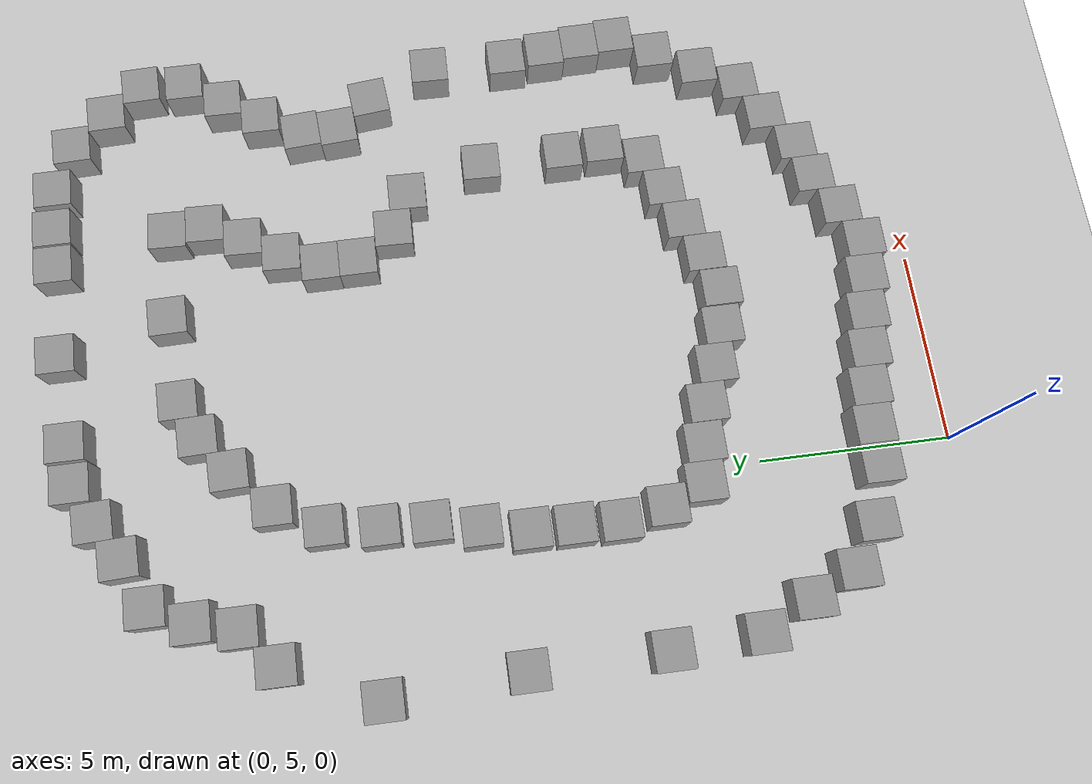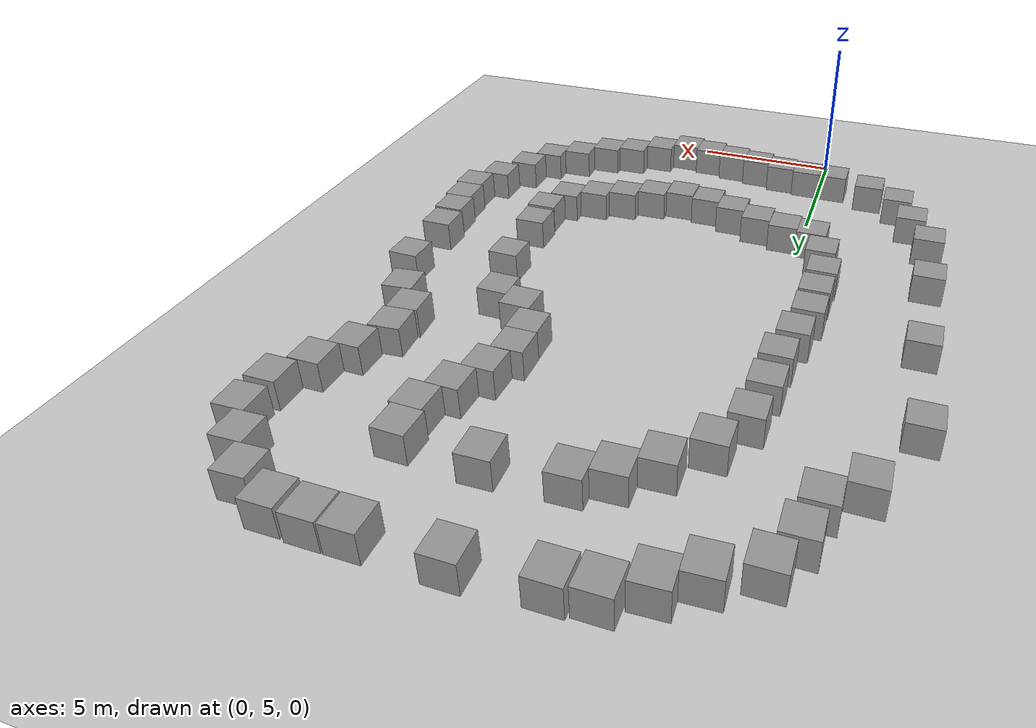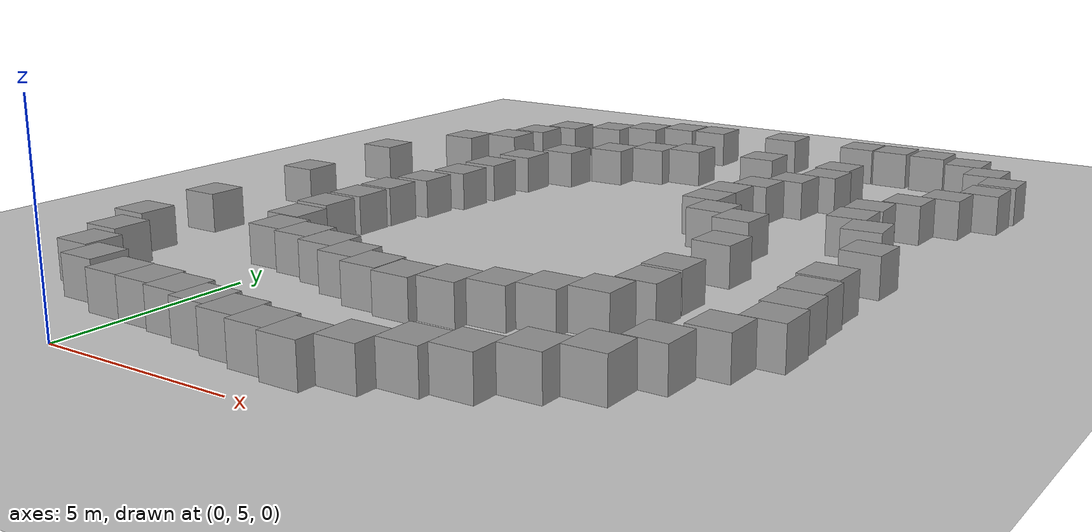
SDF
<sdf version="1.7">
 <world name="default">
  <model name="ground_plane">
   <static>1</static>
   <link name="link">
    <collision name="collision">
     <geometry><plane><normal>0 0 1</normal><size>100 100</size></plane></geometry>
     <surface><friction><ode><mu>100</mu><mu2>50</mu2></ode></friction></surface>
    </collision>
    <visual name="visual">
     <cast_shadows>0</cast_shadows>
     <geometry><plane><normal>0 0 1</normal><size>100 100</size></plane></geometry>
     <material>
      <script><uri>file://media/materials/scripts/gazebo.material</uri><name>Gazebo/Grey</name></script>
     </material>
    </visual>
   </link>
  </model>
  <light name="sun" type="directional">
   <pose>0 0 10 0 -0 0</pose>
   <diffuse>0.8 0.8 0.8 1</diffuse>
   <specular>0.2 0.2 0.2 1</specular>
   <attenuation>
    <range>1000</range>
    <constant>0.9</constant>
    <linear>0.01</linear>
    <quadratic>0.001</quadratic>
   </attenuation>
   <direction>-0.5 0.1 -0.9</direction>
   <spot><inner_angle>0</inner_angle><outer_angle>0</outer_angle><falloff>0</falloff></spot>
  </light>
  <gravity>0 0 -9.8</gravity>
  <magnetic_field>6e-06 2.3e-05 -4.2e-05</magnetic_field>
  <atmosphere type="adiabatic"/>
  <physics type="ode">
   <max_step_size>0.001</max_step_size>
   <real_time_factor>1</real_time_factor>
   <real_time_update_rate>1000</real_time_update_rate>
  </physics>
  <scene><ambient>0.4 0.4 0.4 1</ambient><background>0.7 0.7 0.7 1</background><shadows>1</shadows></scene>
  <audio><device>default</device></audio>
  <spherical_coordinates>
   <surface_model>EARTH_WGS84</surface_model>
   <latitude_deg>0</latitude_deg>
   <longitude_deg>0</longitude_deg>
   <elevation>0</elevation>
   <heading_deg>0</heading_deg>
  </spherical_coordinates>
  <model name="unit_box">
   <pose>-0.526639 7.20125 0.5 0 -0 -0.003748</pose>
   <link name="link">
    <inertial>
     <mass>1</mass>
     <inertia>
      <ixx>0.166667</ixx>
      <ixy>0</ixy>
      <ixz>0</ixz>
      <iyy>0.166667</iyy>
      <iyz>0</iyz>
      <izz>0.166667</izz>
     </inertia>
    </inertial>
    <collision name="collision"><geometry><box><size>1 1 1</size></box></geometry></collision>
    <visual name="visual">
     <geometry><box><size>1 1 1</size></box></geometry>
     <material>
      <script><name>Gazebo/Grey</name><uri>file://media/materials/scripts/gazebo.material</uri></script>
     </material>
    </visual>
   </link>
  </model>
  <model name="unit_box_0">
   <pose>-0.442927 11.6962 0.499995 0 -9e-06 -0.000422</pose>
   <link name="link">
    <inertial>
     <mass>1</mass>
     <inertia>
      <ixx>0.166667</ixx>
      <ixy>0</ixy>
      <ixz>0</ixz>
      <iyy>0.166667</iyy>
      <iyz>0</iyz>
      <izz>0.166667</izz>
     </inertia>
    </inertial>
    <collision name="collision"><geometry><box><size>1 1 1</size></box></geometry></collision>
    <visual name="visual">
     <geometry><box><size>1 1 1</size></box></geometry>
     <material>
      <script><name>Gazebo/Grey</name><uri>file://media/materials/scripts/gazebo.material</uri></script>
     </material>
    </visual>
   </link>
  </model>
  <model name="unit_box_1">
   <pose>0.473281 7.17617 0.499985 1e-05 0 -0.003758</pose>
   <link name="link">
    <inertial>
     <mass>1</mass>
     <inertia>
      <ixx>0.166667</ixx>
      <ixy>0</ixy>
      <ixz>0</ixz>
      <iyy>0.166667</iyy>
      <iyz>0</iyz>
      <izz>0.166667</izz>
     </inertia>
    </inertial>
    <collision name="collision"><geometry><box><size>1 1 1</size></box></geometry></collision>
    <visual name="visual">
     <geometry><box><size>1 1 1</size></box></geometry>
     <material>
      <script><name>Gazebo/Grey</name><uri>file://media/materials/scripts/gazebo.material</uri></script>
     </material>
    </visual>
   </link>
  </model>
  <model name="unit_box_2">
   <pose>1.47302 7.07448 0.499995 0 1e-05 -0.003884</pose>
   <link name="link">
    <inertial>
     <mass>1</mass>
     <inertia>
      <ixx>0.166667</ixx>
      <ixy>0</ixy>
      <ixz>0</ixz>
      <iyy>0.166667</iyy>
      <iyz>0</iyz>
      <izz>0.166667</izz>
     </inertia>
    </inertial>
    <collision name="collision"><geometry><box><size>1 1 1</size></box></geometry></collision>
    <visual name="visual">
     <geometry><box><size>1 1 1</size></box></geometry>
     <material>
      <script><name>Gazebo/Grey</name><uri>file://media/materials/scripts/gazebo.material</uri></script>
     </material>
    </visual>
   </link>
  </model>
  <model name="unit_box_3">
   <pose>2.4724 6.86704 0.5 0 -0 -0.003811</pose>
   <link name="link">
    <inertial>
     <mass>1</mass>
     <inertia>
      <ixx>0.166667</ixx>
      <ixy>0</ixy>
      <ixz>0</ixz>
      <iyy>0.166667</iyy>
      <iyz>0</iyz>
      <izz>0.166667</izz>
     </inertia>
    </inertial>
    <collision name="collision"><geometry><box><size>1 1 1</size></box></geometry></collision>
    <visual name="visual">
     <geometry><box><size>1 1 1</size></box></geometry>
     <material>
      <script><name>Gazebo/Grey</name><uri>file://media/materials/scripts/gazebo.material</uri></script>
     </material>
    </visual>
   </link>
  </model>
  <model name="unit_box_4">
   <pose>0.557015 11.5445 0.5 -0 -0 -0.000423</pose>
   <link name="link">
    <inertial>
     <mass>1</mass>
     <inertia>
      <ixx>0.166667</ixx>
      <ixy>0</ixy>
      <ixz>0</ixz>
      <iyy>0.166667</iyy>
      <iyz>0</iyz>
      <izz>0.166667</izz>
     </inertia>
    </inertial>
    <collision name="collision"><geometry><box><size>1 1 1</size></box></geometry></collision>
    <visual name="visual">
     <geometry><box><size>1 1 1</size></box></geometry>
     <material>
      <script><name>Gazebo/Grey</name><uri>file://media/materials/scripts/gazebo.material</uri></script>
     </material>
    </visual>
   </link>
  </model>
  <model name="unit_box_5">
   <pose>1.56133 11.2931 0.5 0 -0 -0.001523</pose>
   <link name="link">
    <inertial>
     <mass>1</mass>
     <inertia>
      <ixx>0.166667</ixx>
      <ixy>0</ixy>
      <ixz>0</ixz>
      <iyy>0.166667</iyy>
      <iyz>0</iyz>
      <izz>0.166667</izz>
     </inertia>
    </inertial>
    <collision name="collision"><geometry><box><size>1 1 1</size></box></geometry></collision>
    <visual name="visual">
     <geometry><box><size>1 1 1</size></box></geometry>
     <material>
      <script><name>Gazebo/Grey</name><uri>file://media/materials/scripts/gazebo.material</uri></script>
     </material>
    </visual>
   </link>
  </model>
  <model name="unit_box_6">
   <pose>2.56071 10.8846 0.499995 1e-05 -0 -0.001514</pose>
   <link name="link">
    <inertial>
     <mass>1</mass>
     <inertia>
      <ixx>0.166667</ixx>
      <ixy>0</ixy>
      <ixz>0</ixz>
      <iyy>0.166667</iyy>
      <iyz>0</iyz>
      <izz>0.166667</izz>
     </inertia>
    </inertial>
    <collision name="collision"><geometry><box><size>1 1 1</size></box></geometry></collision>
    <visual name="visual">
     <geometry><box><size>1 1 1</size></box></geometry>
     <material>
      <script><name>Gazebo/Grey</name><uri>file://media/materials/scripts/gazebo.material</uri></script>
     </material>
    </visual>
   </link>
  </model>
  <model name="unit_box_7">
   <pose>3.47264 6.6927 0.5 0 0 -0.003472</pose>
   <link name="link">
    <inertial>
     <mass>1</mass>
     <inertia>
      <ixx>0.166667</ixx>
      <ixy>0</ixy>
      <ixz>0</ixz>
      <iyy>0.166667</iyy>
      <iyz>0</iyz>
      <izz>0.166667</izz>
     </inertia>
    </inertial>
    <collision name="collision"><geometry><box><size>1 1 1</size></box></geometry></collision>
    <visual name="visual">
     <geometry><box><size>1 1 1</size></box></geometry>
     <material>
      <script><name>Gazebo/Grey</name><uri>file://media/materials/scripts/gazebo.material</uri></script>
     </material>
    </visual>
   </link>
  </model>
  <model name="unit_box_8">
   <pose>3.56019 10.5333 0.499995 -0 -1e-05 -0.00151</pose>
   <link name="link">
    <inertial>
     <mass>1</mass>
     <inertia>
      <ixx>0.166667</ixx>
      <ixy>0</ixy>
      <ixz>0</ixz>
      <iyy>0.166667</iyy>
      <iyz>0</iyz>
      <izz>0.166667</izz>
     </inertia>
    </inertial>
    <collision name="collision"><geometry><box><size>1 1 1</size></box></geometry></collision>
    <visual name="visual">
     <geometry><box><size>1 1 1</size></box></geometry>
     <material>
      <script><name>Gazebo/Grey</name><uri>file://media/materials/scripts/gazebo.material</uri></script>
     </material>
    </visual>
   </link>
  </model>
  <model name="unit_box_9">
   <pose>4.472 6.50244 0.5 -0 -0 -0.003436</pose>
   <link name="link">
    <inertial>
     <mass>1</mass>
     <inertia>
      <ixx>0.166667</ixx>
      <ixy>0</ixy>
      <ixz>0</ixz>
      <iyy>0.166667</iyy>
      <iyz>0</iyz>
      <izz>0.166667</izz>
     </inertia>
    </inertial>
    <collision name="collision"><geometry><box><size>1 1 1</size></box></geometry></collision>
    <visual name="visual">
     <geometry><box><size>1 1 1</size></box></geometry>
     <material>
      <script><name>Gazebo/Grey</name><uri>file://media/materials/scripts/gazebo.material</uri></script>
     </material>
    </visual>
   </link>
  </model>
  <model name="unit_box_10">
   <pose>4.58384 10.3824 0.5 0 -0 0</pose>
   <link name="link">
    <inertial>
     <mass>1</mass>
     <inertia>
      <ixx>0.166667</ixx>
      <ixy>0</ixy>
      <ixz>0</ixz>
      <iyy>0.166667</iyy>
      <iyz>0</iyz>
      <izz>0.166667</izz>
     </inertia>
    </inertial>
    <collision name="collision"><geometry><box><size>1 1 1</size></box></geometry></collision>
    <visual name="visual">
     <geometry><box><size>1 1 1</size></box></geometry>
     <material>
      <script><name>Gazebo/Grey</name><uri>file://media/materials/scripts/gazebo.material</uri></script>
     </material>
    </visual>
   </link>
  </model>
  <model name="unit_box_11">
   <pose>5.47179 6.35426 0.5 0 0 -0.003045</pose>
   <link name="link">
    <inertial>
     <mass>1</mass>
     <inertia>
      <ixx>0.166667</ixx>
      <ixy>0</ixy>
      <ixz>0</ixz>
      <iyy>0.166667</iyy>
      <iyz>0</iyz>
      <izz>0.166667</izz>
     </inertia>
    </inertial>
    <collision name="collision"><geometry><box><size>1 1 1</size></box></geometry></collision>
    <visual name="visual">
     <geometry><box><size>1 1 1</size></box></geometry>
     <material>
      <script><name>Gazebo/Grey</name><uri>file://media/materials/scripts/gazebo.material</uri></script>
     </material>
    </visual>
   </link>
  </model>
  <model name="unit_box_12">
   <pose>6.47382 6.79563 0.5 0 -0 0.00823</pose>
   <link name="link">
    <inertial>
     <mass>1</mass>
     <inertia>
      <ixx>0.166667</ixx>
      <ixy>0</ixy>
      <ixz>0</ixz>
      <iyy>0.166667</iyy>
      <iyz>0</iyz>
      <izz>0.166667</izz>
     </inertia>
    </inertial>
    <collision name="collision"><geometry><box><size>1 1 1</size></box></geometry></collision>
    <visual name="visual">
     <geometry><box><size>1 1 1</size></box></geometry>
     <material>
      <script><name>Gazebo/Grey</name><uri>file://media/materials/scripts/gazebo.material</uri></script>
     </material>
    </visual>
   </link>
  </model>
  <model name="unit_box_13">
   <pose>7.46952 7.31929 0.5 0 -0 0.011956</pose>
   <link name="link">
    <inertial>
     <mass>1</mass>
     <inertia>
      <ixx>0.166667</ixx>
      <ixy>0</ixy>
      <ixz>0</ixz>
      <iyy>0.166667</iyy>
      <iyz>0</iyz>
      <izz>0.166667</izz>
     </inertia>
    </inertial>
    <collision name="collision"><geometry><box><size>1 1 1</size></box></geometry></collision>
    <visual name="visual">
     <geometry><box><size>1 1 1</size></box></geometry>
     <material>
      <script><name>Gazebo/Grey</name><uri>file://media/materials/scripts/gazebo.material</uri></script>
     </material>
    </visual>
   </link>
  </model>
  <model name="unit_box_14">
   <pose>5.59276 10.6384 0.499995 1e-05 -0 0.007438</pose>
   <link name="link">
    <inertial>
     <mass>1</mass>
     <inertia>
      <ixx>0.166667</ixx>
      <ixy>0</ixy>
      <ixz>0</ixz>
      <iyy>0.166667</iyy>
      <iyz>0</iyz>
      <izz>0.166667</izz>
     </inertia>
    </inertial>
    <collision name="collision"><geometry><box><size>1 1 1</size></box></geometry></collision>
    <visual name="visual">
     <geometry><box><size>1 1 1</size></box></geometry>
     <material>
      <script><name>Gazebo/Grey</name><uri>file://media/materials/scripts/gazebo.material</uri></script>
     </material>
    </visual>
   </link>
  </model>
  <model name="unit_box_15">
   <pose>6.59066 11.0296 0.499995 0 1e-05 0.013298</pose>
   <link name="link">
    <inertial>
     <mass>1</mass>
     <inertia>
      <ixx>0.166667</ixx>
      <ixy>0</ixy>
      <ixz>0</ixz>
      <iyy>0.166667</iyy>
      <iyz>0</iyz>
      <izz>0.166667</izz>
     </inertia>
    </inertial>
    <collision name="collision"><geometry><box><size>1 1 1</size></box></geometry></collision>
    <visual name="visual">
     <geometry><box><size>1 1 1</size></box></geometry>
     <material>
      <script><name>Gazebo/Grey</name><uri>file://media/materials/scripts/gazebo.material</uri></script>
     </material>
    </visual>
   </link>
  </model>
  <model name="unit_box_16">
   <pose>7.58621 11.3817 0.499917 -1e-05 -0 0.012989</pose>
   <link name="link">
    <inertial>
     <mass>1</mass>
     <inertia>
      <ixx>0.166667</ixx>
      <ixy>0</ixy>
      <ixz>0</ixz>
      <iyy>0.166667</iyy>
      <iyz>0</iyz>
      <izz>0.166667</izz>
     </inertia>
    </inertial>
    <collision name="collision"><geometry><box><size>1 1 1</size></box></geometry></collision>
    <visual name="visual">
     <geometry><box><size>1 1 1</size></box></geometry>
     <material>
      <script><name>Gazebo/Grey</name><uri>file://media/materials/scripts/gazebo.material</uri></script>
     </material>
    </visual>
   </link>
  </model>
  <model name="unit_box_17">
   <pose>8.46632 7.61164 0.5 0 -0 0.012967</pose>
   <link name="link">
    <inertial>
     <mass>1</mass>
     <inertia>
      <ixx>0.166667</ixx>
      <ixy>0</ixy>
      <ixz>0</ixz>
      <iyy>0.166667</iyy>
      <iyz>0</iyz>
      <izz>0.166667</izz>
     </inertia>
    </inertial>
    <collision name="collision"><geometry><box><size>1 1 1</size></box></geometry></collision>
    <visual name="visual">
     <geometry><box><size>1 1 1</size></box></geometry>
     <material>
      <script><name>Gazebo/Grey</name><uri>file://media/materials/scripts/gazebo.material</uri></script>
     </material>
    </visual>
   </link>
  </model>
  <model name="unit_box_18">
   <pose>9.45704 8.28466 0.5 0 -0 0.017157</pose>
   <link name="link">
    <inertial>
     <mass>1</mass>
     <inertia>
      <ixx>0.166667</ixx>
      <ixy>0</ixy>
      <ixz>0</ixz>
      <iyy>0.166667</iyy>
      <iyz>0</iyz>
      <izz>0.166667</izz>
     </inertia>
    </inertial>
    <collision name="collision"><geometry><box><size>1 1 1</size></box></geometry></collision>
    <visual name="visual">
     <geometry><box><size>1 1 1</size></box></geometry>
     <material>
      <script><name>Gazebo/Grey</name><uri>file://media/materials/scripts/gazebo.material</uri></script>
     </material>
    </visual>
   </link>
  </model>
  <model name="unit_box_19">
   <pose>8.58085 11.8012 0.5 0 -0 0.012989</pose>
   <link name="link">
    <inertial>
     <mass>1</mass>
     <inertia>
      <ixx>0.166667</ixx>
      <ixy>0</ixy>
      <ixz>0</ixz>
      <iyy>0.166667</iyy>
      <iyz>0</iyz>
      <izz>0.166667</izz>
     </inertia>
    </inertial>
    <collision name="collision"><geometry><box><size>1 1 1</size></box></geometry></collision>
    <visual name="visual">
     <geometry><box><size>1 1 1</size></box></geometry>
     <material>
      <script><name>Gazebo/Grey</name><uri>file://media/materials/scripts/gazebo.material</uri></script>
     </material>
    </visual>
   </link>
  </model>
  <model name="unit_box_20">
   <pose>10.4485 8.84699 0.499995 -0 -1e-05 0.015723</pose>
   <link name="link">
    <inertial>
     <mass>1</mass>
     <inertia>
      <ixx>0.166667</ixx>
      <ixy>0</ixy>
      <ixz>0</ixz>
      <iyy>0.166667</iyy>
      <iyz>0</iyz>
      <izz>0.166667</izz>
     </inertia>
    </inertial>
    <collision name="collision"><geometry><box><size>1 1 1</size></box></geometry></collision>
    <visual name="visual">
     <geometry><box><size>1 1 1</size></box></geometry>
     <material>
      <script><name>Gazebo/Grey</name><uri>file://media/materials/scripts/gazebo.material</uri></script>
     </material>
    </visual>
   </link>
  </model>
  <model name="unit_box_21">
   <pose>9.03211 12.8398 0.5 0 -0 0</pose>
   <link name="link">
    <inertial>
     <mass>1</mass>
     <inertia>
      <ixx>0.166667</ixx>
      <ixy>0</ixy>
      <ixz>0</ixz>
      <iyy>0.166667</iyy>
      <iyz>0</iyz>
      <izz>0.166667</izz>
     </inertia>
    </inertial>
    <collision name="collision"><geometry><box><size>1 1 1</size></box></geometry></collision>
    <visual name="visual">
     <geometry><box><size>1 1 1</size></box></geometry>
     <material>
      <script><name>Gazebo/Grey</name><uri>file://media/materials/scripts/gazebo.material</uri></script>
     </material>
    </visual>
   </link>
  </model>
  <model name="unit_box_22">
   <pose>11.0664 9.87962 0.5 0 -0 0</pose>
   <link name="link">
    <inertial>
     <mass>1</mass>
     <inertia>
      <ixx>0.166667</ixx>
      <ixy>0</ixy>
      <ixz>0</ixz>
      <iyy>0.166667</iyy>
      <iyz>0</iyz>
      <izz>0.166667</izz>
     </inertia>
    </inertial>
    <collision name="collision"><geometry><box><size>1 1 1</size></box></geometry></collision>
    <visual name="visual">
     <geometry><box><size>1 1 1</size></box></geometry>
     <material>
      <script><name>Gazebo/Grey</name><uri>file://media/materials/scripts/gazebo.material</uri></script>
     </material>
    </visual>
   </link>
  </model>
  <model name="unit_box_23">
   <pose>11.7095 11.0275 0.5 0 -0 0</pose>
   <link name="link">
    <inertial>
     <mass>1</mass>
     <inertia>
      <ixx>0.166667</ixx>
      <ixy>0</ixy>
      <ixz>0</ixz>
      <iyy>0.166667</iyy>
      <iyz>0</iyz>
      <izz>0.166667</izz>
     </inertia>
    </inertial>
    <collision name="collision"><geometry><box><size>1 1 1</size></box></geometry></collision>
    <visual name="visual">
     <geometry><box><size>1 1 1</size></box></geometry>
     <material>
      <script><name>Gazebo/Grey</name><uri>file://media/materials/scripts/gazebo.material</uri></script>
     </material>
    </visual>
   </link>
  </model>
  <model name="unit_box_24">
   <pose>12.3045 12.0441 0.499995 0 -1e-05 0.01059</pose>
   <link name="link">
    <inertial>
     <mass>1</mass>
     <inertia>
      <ixx>0.166667</ixx>
      <ixy>0</ixy>
      <ixz>0</ixz>
      <iyy>0.166667</iyy>
      <iyz>0</iyz>
      <izz>0.166667</izz>
     </inertia>
    </inertial>
    <collision name="collision"><geometry><box><size>1 1 1</size></box></geometry></collision>
    <visual name="visual">
     <geometry><box><size>1 1 1</size></box></geometry>
     <material>
      <script><name>Gazebo/Grey</name><uri>file://media/materials/scripts/gazebo.material</uri></script>
     </material>
    </visual>
   </link>
  </model>
  <model name="unit_box_25">
   <pose>8.97792 13.9722 0.5 0 -0 0</pose>
   <link name="link">
    <inertial>
     <mass>1</mass>
     <inertia>
      <ixx>0.166667</ixx>
      <ixy>0</ixy>
      <ixz>0</ixz>
      <iyy>0.166667</iyy>
      <iyz>0</iyz>
      <izz>0.166667</izz>
     </inertia>
    </inertial>
    <collision name="collision"><geometry><box><size>1 1 1</size></box></geometry></collision>
    <visual name="visual">
     <geometry><box><size>1 1 1</size></box></geometry>
     <material>
      <script><name>Gazebo/Grey</name><uri>file://media/materials/scripts/gazebo.material</uri></script>
     </material>
    </visual>
   </link>
  </model>
  <model name="unit_box_26">
   <pose>12.2214 13.0435 0.499995 0 1e-05 0.010541</pose>
   <link name="link">
    <inertial>
     <mass>1</mass>
     <inertia>
      <ixx>0.166667</ixx>
      <ixy>0</ixy>
      <ixz>0</ixz>
      <iyy>0.166667</iyy>
      <iyz>0</iyz>
      <izz>0.166667</izz>
     </inertia>
    </inertial>
    <collision name="collision"><geometry><box><size>1 1 1</size></box></geometry></collision>
    <visual name="visual">
     <geometry><box><size>1 1 1</size></box></geometry>
     <material>
      <script><name>Gazebo/Grey</name><uri>file://media/materials/scripts/gazebo.material</uri></script>
     </material>
    </visual>
   </link>
  </model>
  <model name="unit_box_27">
   <pose>12.1183 14.0428 0.5 0 -0 0.010952</pose>
   <link name="link">
    <inertial>
     <mass>1</mass>
     <inertia>
      <ixx>0.166667</ixx>
      <ixy>0</ixy>
      <ixz>0</ixz>
      <iyy>0.166667</iyy>
      <iyz>0</iyz>
      <izz>0.166667</izz>
     </inertia>
    </inertial>
    <collision name="collision"><geometry><box><size>1 1 1</size></box></geometry></collision>
    <visual name="visual">
     <geometry><box><size>1 1 1</size></box></geometry>
     <material>
      <script><name>Gazebo/Grey</name><uri>file://media/materials/scripts/gazebo.material</uri></script>
     </material>
    </visual>
   </link>
  </model>
  <model name="unit_box_28">
   <pose>12.002 15.1306 0.5 0 -0 0</pose>
   <link name="link">
    <inertial>
     <mass>1</mass>
     <inertia>
      <ixx>0.166667</ixx>
      <ixy>0</ixy>
      <ixz>0</ixz>
      <iyy>0.166667</iyy>
      <iyz>0</iyz>
      <izz>0.166667</izz>
     </inertia>
    </inertial>
    <collision name="collision"><geometry><box><size>1 1 1</size></box></geometry></collision>
    <visual name="visual">
     <geometry><box><size>1 1 1</size></box></geometry>
     <material>
      <script><name>Gazebo/Grey</name><uri>file://media/materials/scripts/gazebo.material</uri></script>
     </material>
    </visual>
   </link>
  </model>
  <model name="unit_box_29">
   <pose>12.0081 17.2916 0.5 0 -0 -0.024331</pose>
   <link name="link">
    <inertial>
     <mass>1</mass>
     <inertia>
      <ixx>0.166667</ixx>
      <ixy>0</ixy>
      <ixz>0</ixz>
      <iyy>0.166667</iyy>
      <iyz>0</iyz>
      <izz>0.166667</izz>
     </inertia>
    </inertial>
    <collision name="collision"><geometry><box><size>1 0.999996 1</size></box></geometry></collision>
    <visual name="visual">
     <geometry><box><size>1 0.999996 1</size></box></geometry>
     <material>
      <script><name>Gazebo/Grey</name><uri>file://media/materials/scripts/gazebo.material</uri></script>
     </material>
    </visual>
   </link>
  </model>
  <model name="unit_box_30">
   <pose>8.91985 16.2203 0.499994 -2e-06 -6e-06 -0.026874</pose>
   <link name="link">
    <inertial>
     <mass>1</mass>
     <inertia>
      <ixx>0.166667</ixx>
      <ixy>0</ixy>
      <ixz>0</ixz>
      <iyy>0.166667</iyy>
      <iyz>0</iyz>
      <izz>0.166667</izz>
     </inertia>
    </inertial>
    <collision name="collision"><geometry><box><size>1 0.999999 1</size></box></geometry></collision>
    <visual name="visual">
     <geometry><box><size>1 0.999999 1</size></box></geometry>
     <material>
      <script><name>Gazebo/Grey</name><uri>file://media/materials/scripts/gazebo.material</uri></script>
     </material>
    </visual>
   </link>
  </model>
  <model name="unit_box_31">
   <pose>11.2269 19.05 0.499996 0 7e-06 0.100616</pose>
   <link name="link">
    <inertial>
     <mass>1</mass>
     <inertia>
      <ixx>0.166667</ixx>
      <ixy>0</ixy>
      <ixz>0</ixz>
      <iyy>0.166667</iyy>
      <iyz>0</iyz>
      <izz>0.166667</izz>
     </inertia>
    </inertial>
    <collision name="collision"><geometry><box><size>1 1 1</size></box></geometry></collision>
    <visual name="visual">
     <geometry><box><size>1 1 1</size></box></geometry>
     <material>
      <script><name>Gazebo/Grey</name><uri>file://media/materials/scripts/gazebo.material</uri></script>
     </material>
    </visual>
   </link>
  </model>
  <model name="unit_box_32">
   <pose>8.29846 18.3019 0.5 0 0 -0.024164</pose>
   <link name="link">
    <inertial>
     <mass>1</mass>
     <inertia>
      <ixx>0.166667</ixx>
      <ixy>0</ixy>
      <ixz>0</ixz>
      <iyy>0.166667</iyy>
      <iyz>0</iyz>
      <izz>0.166667</izz>
     </inertia>
    </inertial>
    <collision name="collision"><geometry><box><size>1 1 1</size></box></geometry></collision>
    <visual name="visual">
     <geometry><box><size>1 1 1</size></box></geometry>
     <material>
      <script><name>Gazebo/Grey</name><uri>file://media/materials/scripts/gazebo.material</uri></script>
     </material>
    </visual>
   </link>
  </model>
  <model name="unit_box_33">
   <pose>7.30963 18.7818 0.499995 0 -1e-05 -0.024113</pose>
   <link name="link">
    <inertial>
     <mass>1</mass>
     <inertia>
      <ixx>0.166667</ixx>
      <ixy>0</ixy>
      <ixz>0</ixz>
      <iyy>0.166667</iyy>
      <iyz>0</iyz>
      <izz>0.166667</izz>
     </inertia>
    </inertial>
    <collision name="collision"><geometry><box><size>1 1 1</size></box></geometry></collision>
    <visual name="visual">
     <geometry><box><size>1 1 1</size></box></geometry>
     <material>
      <script><name>Gazebo/Grey</name><uri>file://media/materials/scripts/gazebo.material</uri></script>
     </material>
    </visual>
   </link>
  </model>
  <model name="unit_box_34">
   <pose>6.6108 19.8024 0.499995 0 -1e-05 -0.003081</pose>
   <link name="link">
    <inertial>
     <mass>1</mass>
     <inertia>
      <ixx>0.166667</ixx>
      <ixy>0</ixy>
      <ixz>0</ixz>
      <iyy>0.166667</iyy>
      <iyz>0</iyz>
      <izz>0.166667</izz>
     </inertia>
    </inertial>
    <collision name="collision"><geometry><box><size>1 1 1</size></box></geometry></collision>
    <visual name="visual">
     <geometry><box><size>1 1 1</size></box></geometry>
     <material>
      <script><name>Gazebo/Grey</name><uri>file://media/materials/scripts/gazebo.material</uri></script>
     </material>
    </visual>
   </link>
  </model>
  <model name="unit_box_35">
   <pose>10.4664 19.9942 0.5 0 -0 0.068468</pose>
   <link name="link">
    <inertial>
     <mass>1</mass>
     <inertia>
      <ixx>0.166667</ixx>
      <ixy>0</ixy>
      <ixz>0</ixz>
      <iyy>0.166667</iyy>
      <iyz>0</iyz>
      <izz>0.166667</izz>
     </inertia>
    </inertial>
    <collision name="collision"><geometry><box><size>1 1 1</size></box></geometry></collision>
    <visual name="visual">
     <geometry><box><size>1 1 1</size></box></geometry>
     <material>
      <script><name>Gazebo/Grey</name><uri>file://media/materials/scripts/gazebo.material</uri></script>
     </material>
    </visual>
   </link>
  </model>
  <model name="unit_box_36">
   <pose>10.4725 20.9969 0.499985 4e-06 -0 0.068439</pose>
   <link name="link">
    <inertial>
     <mass>1</mass>
     <inertia>
      <ixx>0.166667</ixx>
      <ixy>0</ixy>
      <ixz>0</ixz>
      <iyy>0.166667</iyy>
      <iyz>0</iyz>
      <izz>0.166667</izz>
     </inertia>
    </inertial>
    <collision name="collision"><geometry><box><size>1 1 1</size></box></geometry></collision>
    <visual name="visual">
     <geometry><box><size>1 1 1</size></box></geometry>
     <material>
      <script><name>Gazebo/Grey</name><uri>file://media/materials/scripts/gazebo.material</uri></script>
     </material>
    </visual>
   </link>
  </model>
  <model name="unit_box_37">
   <pose>6.60547 20.8025 0.499995 0 1e-05 -0.003129</pose>
   <link name="link">
    <inertial>
     <mass>1</mass>
     <inertia>
      <ixx>0.166667</ixx>
      <ixy>0</ixy>
      <ixz>0</ixz>
      <iyy>0.166667</iyy>
      <iyz>0</iyz>
      <izz>0.166667</izz>
     </inertia>
    </inertial>
    <collision name="collision"><geometry><box><size>1 1 1</size></box></geometry></collision>
    <visual name="visual">
     <geometry><box><size>1 1 1</size></box></geometry>
     <material>
      <script><name>Gazebo/Grey</name><uri>file://media/materials/scripts/gazebo.material</uri></script>
     </material>
    </visual>
   </link>
  </model>
  <model name="unit_box_38">
   <pose>11.0611 22.072 0.5 0 0 -0.009291</pose>
   <link name="link">
    <inertial>
     <mass>1</mass>
     <inertia>
      <ixx>0.166667</ixx>
      <ixy>0</ixy>
      <ixz>0</ixz>
      <iyy>0.166667</iyy>
      <iyz>0</iyz>
      <izz>0.166667</izz>
     </inertia>
    </inertial>
    <collision name="collision"><geometry><box><size>1 1 1</size></box></geometry></collision>
    <visual name="visual">
     <geometry><box><size>1 1 1</size></box></geometry>
     <material>
      <script><name>Gazebo/Grey</name><uri>file://media/materials/scripts/gazebo.material</uri></script>
     </material>
    </visual>
   </link>
  </model>
  <model name="unit_box_39">
   <pose>11.7003 23.0662 0.499995 0 1e-05 -0.009288</pose>
   <link name="link">
    <inertial>
     <mass>1</mass>
     <inertia>
      <ixx>0.166667</ixx>
      <ixy>0</ixy>
      <ixz>0</ixz>
      <iyy>0.166667</iyy>
      <iyz>0</iyz>
      <izz>0.166667</izz>
     </inertia>
    </inertial>
    <collision name="collision"><geometry><box><size>1 1 1</size></box></geometry></collision>
    <visual name="visual">
     <geometry><box><size>1 1 1</size></box></geometry>
     <material>
      <script><name>Gazebo/Grey</name><uri>file://media/materials/scripts/gazebo.material</uri></script>
     </material>
    </visual>
   </link>
  </model>
  <model name="unit_box_40">
   <pose>6.99695 21.8048 0.499995 0 -1e-05 -0.032779</pose>
   <link name="link">
    <inertial>
     <mass>1</mass>
     <inertia>
      <ixx>0.166667</ixx>
      <ixy>0</ixy>
      <ixz>0</ixz>
      <iyy>0.166667</iyy>
      <iyz>0</iyz>
      <izz>0.166667</izz>
     </inertia>
    </inertial>
    <collision name="collision"><geometry><box><size>1 1 1</size></box></geometry></collision>
    <visual name="visual">
     <geometry><box><size>1 1 1</size></box></geometry>
     <material>
      <script><name>Gazebo/Grey</name><uri>file://media/materials/scripts/gazebo.material</uri></script>
     </material>
    </visual>
   </link>
  </model>
  <model name="unit_box_41">
   <pose>7.54916 22.7874 0.5 0 -0 -0.032732</pose>
   <link name="link">
    <inertial>
     <mass>1</mass>
     <inertia>
      <ixx>0.166667</ixx>
      <ixy>0</ixy>
      <ixz>0</ixz>
      <iyy>0.166667</iyy>
      <iyz>0</iyz>
      <izz>0.166667</izz>
     </inertia>
    </inertial>
    <collision name="collision"><geometry><box><size>1 1 1</size></box></geometry></collision>
    <visual name="visual">
     <geometry><box><size>1 1 1</size></box></geometry>
     <material>
      <script><name>Gazebo/Grey</name><uri>file://media/materials/scripts/gazebo.material</uri></script>
     </material>
    </visual>
   </link>
  </model>
  <model name="unit_box_42">
   <pose>12.3435 24.0958 0.5 0 -0 0</pose>
   <link name="link">
    <inertial>
     <mass>1</mass>
     <inertia>
      <ixx>0.166667</ixx>
      <ixy>0</ixy>
      <ixz>0</ixz>
      <iyy>0.166667</iyy>
      <iyz>0</iyz>
      <izz>0.166667</izz>
     </inertia>
    </inertial>
    <collision name="collision"><geometry><box><size>1 1 1</size></box></geometry></collision>
    <visual name="visual">
     <geometry><box><size>1 1 1</size></box></geometry>
     <material>
      <script><name>Gazebo/Grey</name><uri>file://media/materials/scripts/gazebo.material</uri></script>
     </material>
    </visual>
   </link>
  </model>
  <model name="unit_box_43">
   <pose>8.05606 23.772 0.499917 0 1e-05 -0.031407</pose>
   <link name="link">
    <inertial>
     <mass>1</mass>
     <inertia>
      <ixx>0.166667</ixx>
      <ixy>0</ixy>
      <ixz>0</ixz>
      <iyy>0.166667</iyy>
      <iyz>0</iyz>
      <izz>0.166667</izz>
     </inertia>
    </inertial>
    <collision name="collision"><geometry><box><size>1 1 1</size></box></geometry></collision>
    <visual name="visual">
     <geometry><box><size>1 1 1</size></box></geometry>
     <material>
      <script><name>Gazebo/Grey</name><uri>file://media/materials/scripts/gazebo.material</uri></script>
     </material>
    </visual>
   </link>
  </model>
  <model name="unit_box_44">
   <pose>12.391 25.2839 0.499995 0 1e-05 0.03194</pose>
   <link name="link">
    <inertial>
     <mass>1</mass>
     <inertia>
      <ixx>0.166667</ixx>
      <ixy>0</ixy>
      <ixz>0</ixz>
      <iyy>0.166667</iyy>
      <iyz>0</iyz>
      <izz>0.166667</izz>
     </inertia>
    </inertial>
    <collision name="collision"><geometry><box><size>1 1 1</size></box></geometry></collision>
    <visual name="visual">
     <geometry><box><size>1 1 1</size></box></geometry>
     <material>
      <script><name>Gazebo/Grey</name><uri>file://media/materials/scripts/gazebo.material</uri></script>
     </material>
    </visual>
   </link>
  </model>
  <model name="unit_box_45">
   <pose>7.99028 24.7749 0.5 0 0 -0.03053</pose>
   <link name="link">
    <inertial>
     <mass>1</mass>
     <inertia>
      <ixx>0.166667</ixx>
      <ixy>0</ixy>
      <ixz>0</ixz>
      <iyy>0.166667</iyy>
      <iyz>0</iyz>
      <izz>0.166667</izz>
     </inertia>
    </inertial>
    <collision name="collision"><geometry><box><size>1 1 1</size></box></geometry></collision>
    <visual name="visual">
     <geometry><box><size>1 1 1</size></box></geometry>
     <material>
      <script><name>Gazebo/Grey</name><uri>file://media/materials/scripts/gazebo.material</uri></script>
     </material>
    </visual>
   </link>
  </model>
  <model name="unit_box_46">
   <pose>11.6614 26.2617 0.5 0 -0 0.031058</pose>
   <link name="link">
    <inertial>
     <mass>1</mass>
     <inertia>
      <ixx>0.166667</ixx>
      <ixy>0</ixy>
      <ixz>0</ixz>
      <iyy>0.166667</iyy>
      <iyz>0</iyz>
      <izz>0.166667</izz>
     </inertia>
    </inertial>
    <collision name="collision"><geometry><box><size>1 1 1</size></box></geometry></collision>
    <visual name="visual">
     <geometry><box><size>1 1 1</size></box></geometry>
     <material>
      <script><name>Gazebo/Grey</name><uri>file://media/materials/scripts/gazebo.material</uri></script>
     </material>
    </visual>
   </link>
  </model>
  <model name="unit_box_47">
   <pose>10.8073 27.2358 0.499995 1e-05 -0 0.030886</pose>
   <link name="link">
    <inertial>
     <mass>1</mass>
     <inertia>
      <ixx>0.166667</ixx>
      <ixy>0</ixy>
      <ixz>0</ixz>
      <iyy>0.166667</iyy>
      <iyz>0</iyz>
      <izz>0.166667</izz>
     </inertia>
    </inertial>
    <collision name="collision"><geometry><box><size>1 1 1</size></box></geometry></collision>
    <visual name="visual">
     <geometry><box><size>1 1 1</size></box></geometry>
     <material>
      <script><name>Gazebo/Grey</name><uri>file://media/materials/scripts/gazebo.material</uri></script>
     </material>
    </visual>
   </link>
  </model>
  <model name="unit_box_48">
   <pose>9.57849 27.7816 0.5 0 -0 0</pose>
   <link name="link">
    <inertial>
     <mass>1</mass>
     <inertia>
      <ixx>0.166667</ixx>
      <ixy>0</ixy>
      <ixz>0</ixz>
      <iyy>0.166667</iyy>
      <iyz>0</iyz>
      <izz>0.166667</izz>
     </inertia>
    </inertial>
    <collision name="collision"><geometry><box><size>1 1 1</size></box></geometry></collision>
    <visual name="visual">
     <geometry><box><size>1 1 1</size></box></geometry>
     <material>
      <script><name>Gazebo/Grey</name><uri>file://media/materials/scripts/gazebo.material</uri></script>
     </material>
    </visual>
   </link>
  </model>
  <model name="unit_box_49">
   <pose>8.44639 27.8261 0.5 0 -0 0</pose>
   <link name="link">
    <inertial>
     <mass>1</mass>
     <inertia>
      <ixx>0.166667</ixx>
      <ixy>0</ixy>
      <ixz>0</ixz>
      <iyy>0.166667</iyy>
      <iyz>0</iyz>
      <izz>0.166667</izz>
     </inertia>
    </inertial>
    <collision name="collision"><geometry><box><size>1 1 1</size></box></geometry></collision>
    <visual name="visual">
     <geometry><box><size>1 1 1</size></box></geometry>
     <material>
      <script><name>Gazebo/Grey</name><uri>file://media/materials/scripts/gazebo.material</uri></script>
     </material>
    </visual>
   </link>
  </model>
  <model name="unit_box_50">
   <pose>4.91951 27.8245 0.5 0 -0 0</pose>
   <link name="link">
    <inertial>
     <mass>1</mass>
     <inertia>
      <ixx>0.166667</ixx>
      <ixy>0</ixy>
      <ixz>0</ixz>
      <iyy>0.166667</iyy>
      <iyz>0</iyz>
      <izz>0.166667</izz>
     </inertia>
    </inertial>
    <collision name="collision"><geometry><box><size>0.999999 1 1</size></box></geometry></collision>
    <visual name="visual">
     <geometry><box><size>0.999999 1 1</size></box></geometry>
     <material>
      <script><name>Gazebo/Grey</name><uri>file://media/materials/scripts/gazebo.material</uri></script>
     </material>
    </visual>
   </link>
  </model>
  <model name="unit_box_51">
   <pose>7.39772 27.8228 0.5 0 -0 0</pose>
   <link name="link">
    <inertial>
     <mass>1</mass>
     <inertia>
      <ixx>0.166667</ixx>
      <ixy>0</ixy>
      <ixz>0</ixz>
      <iyy>0.166667</iyy>
      <iyz>0</iyz>
      <izz>0.166667</izz>
     </inertia>
    </inertial>
    <collision name="collision"><geometry><box><size>1 1 1</size></box></geometry></collision>
    <visual name="visual">
     <geometry><box><size>1 1 1</size></box></geometry>
     <material>
      <script><name>Gazebo/Grey</name><uri>file://media/materials/scripts/gazebo.material</uri></script>
     </material>
    </visual>
   </link>
  </model>
  <model name="unit_box_52">
   <pose>5.5916 24.8942 0.5 -1e-06 -0 0.017119</pose>
   <link name="link">
    <inertial>
     <mass>1</mass>
     <inertia>
      <ixx>0.166667</ixx>
      <ixy>0</ixy>
      <ixz>0</ixz>
      <iyy>0.166667</iyy>
      <iyz>0</iyz>
      <izz>0.166667</izz>
     </inertia>
    </inertial>
    <collision name="collision"><geometry><box><size>1 1 1</size></box></geometry></collision>
    <visual name="visual">
     <geometry><box><size>1 1 1</size></box></geometry>
     <material>
      <script><name>Gazebo/Grey</name><uri>file://media/materials/scripts/gazebo.material</uri></script>
     </material>
    </visual>
   </link>
  </model>
  <model name="unit_box_53">
   <pose>3.30066 24.7514 0.5 0 -0 0.021486</pose>
   <link name="link">
    <inertial>
     <mass>1</mass>
     <inertia>
      <ixx>0.166667</ixx>
      <ixy>0</ixy>
      <ixz>0</ixz>
      <iyy>0.166667</iyy>
      <iyz>0</iyz>
      <izz>0.166667</izz>
     </inertia>
    </inertial>
    <collision name="collision"><geometry><box><size>1 1 1</size></box></geometry></collision>
    <visual name="visual">
     <geometry><box><size>1 1 1</size></box></geometry>
     <material>
      <script><name>Gazebo/Grey</name><uri>file://media/materials/scripts/gazebo.material</uri></script>
     </material>
    </visual>
   </link>
  </model>
  <model name="unit_box_54">
   <pose>2.30913 24.3076 0.499995 1e-05 0 0.031693</pose>
   <link name="link">
    <inertial>
     <mass>1</mass>
     <inertia>
      <ixx>0.166667</ixx>
      <ixy>0</ixy>
      <ixz>0</ixz>
      <iyy>0.166667</iyy>
      <iyz>0</iyz>
      <izz>0.166667</izz>
     </inertia>
    </inertial>
    <collision name="collision"><geometry><box><size>1 1 1</size></box></geometry></collision>
    <visual name="visual">
     <geometry><box><size>1 1 1</size></box></geometry>
     <material>
      <script><name>Gazebo/Grey</name><uri>file://media/materials/scripts/gazebo.material</uri></script>
     </material>
    </visual>
   </link>
  </model>
  <model name="unit_box_55">
   <pose>1.33211 23.5789 0.499995 1e-05 0 0.033791</pose>
   <link name="link">
    <inertial>
     <mass>1</mass>
     <inertia>
      <ixx>0.166667</ixx>
      <ixy>0</ixy>
      <ixz>0</ixz>
      <iyy>0.166667</iyy>
      <iyz>0</iyz>
      <izz>0.166667</izz>
     </inertia>
    </inertial>
    <collision name="collision"><geometry><box><size>1 1 1</size></box></geometry></collision>
    <visual name="visual">
     <geometry><box><size>1 1 1</size></box></geometry>
     <material>
      <script><name>Gazebo/Grey</name><uri>file://media/materials/scripts/gazebo.material</uri></script>
     </material>
    </visual>
   </link>
  </model>
  <model name="unit_box_56">
   <pose>2.5647 27.6472 0.5 0 -0 0</pose>
   <link name="link">
    <inertial>
     <mass>1</mass>
     <inertia>
      <ixx>0.166667</ixx>
      <ixy>0</ixy>
      <ixz>0</ixz>
      <iyy>0.166667</iyy>
      <iyz>0</iyz>
      <izz>0.166667</izz>
     </inertia>
    </inertial>
    <collision name="collision"><geometry><box><size>1 1 1</size></box></geometry></collision>
    <visual name="visual">
     <geometry><box><size>1 1 1</size></box></geometry>
     <material>
      <script><name>Gazebo/Grey</name><uri>file://media/materials/scripts/gazebo.material</uri></script>
     </material>
    </visual>
   </link>
  </model>
  <model name="unit_box_57">
   <pose>1.49299 27.5538 0.5 0 -0 0</pose>
   <link name="link">
    <inertial>
     <mass>1</mass>
     <inertia>
      <ixx>0.166667</ixx>
      <ixy>0</ixy>
      <ixz>0</ixz>
      <iyy>0.166667</iyy>
      <iyz>0</iyz>
      <izz>0.166667</izz>
     </inertia>
    </inertial>
    <collision name="collision"><geometry><box><size>1 1 1</size></box></geometry></collision>
    <visual name="visual">
     <geometry><box><size>1 1 1</size></box></geometry>
     <material>
      <script><name>Gazebo/Grey</name><uri>file://media/materials/scripts/gazebo.material</uri></script>
     </material>
    </visual>
   </link>
  </model>
  <model name="unit_box_58">
   <pose>0.453125 27.0163 0.5 0 -0 0.043039</pose>
   <link name="link">
    <inertial>
     <mass>1</mass>
     <inertia>
      <ixx>0.166667</ixx>
      <ixy>0</ixy>
      <ixz>0</ixz>
      <iyy>0.166667</iyy>
      <iyz>0</iyz>
      <izz>0.166667</izz>
     </inertia>
    </inertial>
    <collision name="collision"><geometry><box><size>1 1 1</size></box></geometry></collision>
    <visual name="visual">
     <geometry><box><size>1 1 1</size></box></geometry>
     <material>
      <script><name>Gazebo/Grey</name><uri>file://media/materials/scripts/gazebo.material</uri></script>
     </material>
    </visual>
   </link>
  </model>
  <model name="unit_box_59">
   <pose>-0.522541 26.4135 0.499995 -0 -1e-05 0.043043</pose>
   <link name="link">
    <inertial>
     <mass>1</mass>
     <inertia>
      <ixx>0.166667</ixx>
      <ixy>0</ixy>
      <ixz>0</ixz>
      <iyy>0.166667</iyy>
      <iyz>0</iyz>
      <izz>0.166667</izz>
     </inertia>
    </inertial>
    <collision name="collision"><geometry><box><size>1 1 1</size></box></geometry></collision>
    <visual name="visual">
     <geometry><box><size>1 1 1</size></box></geometry>
     <material>
      <script><name>Gazebo/Grey</name><uri>file://media/materials/scripts/gazebo.material</uri></script>
     </material>
    </visual>
   </link>
  </model>
  <model name="unit_box_60">
   <pose>-1.77889 25.8196 0.5 0 -0 0</pose>
   <link name="link">
    <inertial>
     <mass>1</mass>
     <inertia>
      <ixx>0.166667</ixx>
      <ixy>0</ixy>
      <ixz>0</ixz>
      <iyy>0.166667</iyy>
      <iyz>0</iyz>
      <izz>0.166667</izz>
     </inertia>
    </inertial>
    <collision name="collision"><geometry><box><size>1 1 1</size></box></geometry></collision>
    <visual name="visual">
     <geometry><box><size>1 1 1</size></box></geometry>
     <material>
      <script><name>Gazebo/Grey</name><uri>file://media/materials/scripts/gazebo.material</uri></script>
     </material>
    </visual>
   </link>
  </model>
  <model name="unit_box_61">
   <pose>-2.28487 24.7366 0.5 0 -0 0</pose>
   <link name="link">
    <inertial>
     <mass>1</mass>
     <inertia>
      <ixx>0.166667</ixx>
      <ixy>0</ixy>
      <ixz>0</ixz>
      <iyy>0.166667</iyy>
      <iyz>0</iyz>
      <izz>0.166667</izz>
     </inertia>
    </inertial>
    <collision name="collision"><geometry><box><size>1 1 1</size></box></geometry></collision>
    <visual name="visual">
     <geometry><box><size>1 1 1</size></box></geometry>
     <material>
      <script><name>Gazebo/Grey</name><uri>file://media/materials/scripts/gazebo.material</uri></script>
     </material>
    </visual>
   </link>
  </model>
  <model name="unit_box_62">
   <pose>-2.54037 23.6007 0.5 0 -0 0</pose>
   <link name="link">
    <inertial>
     <mass>1</mass>
     <inertia>
      <ixx>0.166667</ixx>
      <ixy>0</ixy>
      <ixz>0</ixz>
      <iyy>0.166667</iyy>
      <iyz>0</iyz>
      <izz>0.166667</izz>
     </inertia>
    </inertial>
    <collision name="collision"><geometry><box><size>1 1 1</size></box></geometry></collision>
    <visual name="visual">
     <geometry><box><size>1 1 1</size></box></geometry>
     <material>
      <script><name>Gazebo/Grey</name><uri>file://media/materials/scripts/gazebo.material</uri></script>
     </material>
    </visual>
   </link>
  </model>
  <model name="unit_box_63">
   <pose>-0.908232 12.7329 0.5 0 -0 0</pose>
   <link name="link">
    <inertial>
     <mass>1</mass>
     <inertia>
      <ixx>0.166667</ixx>
      <ixy>0</ixy>
      <ixz>0</ixz>
      <iyy>0.166667</iyy>
      <iyz>0</iyz>
      <izz>0.166667</izz>
     </inertia>
    </inertial>
    <collision name="collision"><geometry><box><size>1 1 1</size></box></geometry></collision>
    <visual name="visual">
     <geometry><box><size>1 1 1</size></box></geometry>
     <material>
      <script><name>Gazebo/Grey</name><uri>file://media/materials/scripts/gazebo.material</uri></script>
     </material>
    </visual>
   </link>
  </model>
  <model name="unit_box_64">
   <pose>-1.92248 7.62504 0.5 0 -0 0</pose>
   <link name="link">
    <inertial>
     <mass>1</mass>
     <inertia>
      <ixx>0.166667</ixx>
      <ixy>0</ixy>
      <ixz>0</ixz>
      <iyy>0.166667</iyy>
      <iyz>0</iyz>
      <izz>0.166667</izz>
     </inertia>
    </inertial>
    <collision name="collision"><geometry><box><size>1 1 1</size></box></geometry></collision>
    <visual name="visual">
     <geometry><box><size>1 1 1</size></box></geometry>
     <material>
      <script><name>Gazebo/Grey</name><uri>file://media/materials/scripts/gazebo.material</uri></script>
     </material>
    </visual>
   </link>
  </model>
  <model name="unit_box_65">
   <pose>-3.02282 8.33384 0.5 0 -0 0</pose>
   <link name="link">
    <inertial>
     <mass>1</mass>
     <inertia>
      <ixx>0.166667</ixx>
      <ixy>0</ixy>
      <ixz>0</ixz>
      <iyy>0.166667</iyy>
      <iyz>0</iyz>
      <izz>0.166667</izz>
     </inertia>
    </inertial>
    <collision name="collision"><geometry><box><size>1 1 1</size></box></geometry></collision>
    <visual name="visual">
     <geometry><box><size>1 1 1</size></box></geometry>
     <material>
      <script><name>Gazebo/Grey</name><uri>file://media/materials/scripts/gazebo.material</uri></script>
     </material>
    </visual>
   </link>
  </model>
  <model name="unit_box_66">
   <pose>-3.58694 9.56081 0.5 0 -0 0</pose>
   <link name="link">
    <inertial>
     <mass>1</mass>
     <inertia>
      <ixx>0.166667</ixx>
      <ixy>0</ixy>
      <ixz>0</ixz>
      <iyy>0.166667</iyy>
      <iyz>0</iyz>
      <izz>0.166667</izz>
     </inertia>
    </inertial>
    <collision name="collision"><geometry><box><size>1 1 1</size></box></geometry></collision>
    <visual name="visual">
     <geometry><box><size>1 1 1</size></box></geometry>
     <material>
      <script><name>Gazebo/Grey</name><uri>file://media/materials/scripts/gazebo.material</uri></script>
     </material>
    </visual>
   </link>
  </model>
  <model name="unit_box_67">
   <pose>-4.25428 10.87 0.5 0 -0 0</pose>
   <link name="link">
    <inertial>
     <mass>1</mass>
     <inertia>
      <ixx>0.166667</ixx>
      <ixy>0</ixy>
      <ixz>0</ixz>
      <iyy>0.166667</iyy>
      <iyz>0</iyz>
      <izz>0.166667</izz>
     </inertia>
    </inertial>
    <collision name="collision"><geometry><box><size>1 1 1</size></box></geometry></collision>
    <visual name="visual">
     <geometry><box><size>1 1 1</size></box></geometry>
     <material>
      <script><name>Gazebo/Grey</name><uri>file://media/materials/scripts/gazebo.material</uri></script>
     </material>
    </visual>
   </link>
  </model>
  <model name="unit_box_68">
   <pose>-1.13031 13.9512 0.5 0 -0 0</pose>
   <link name="link">
    <inertial>
     <mass>1</mass>
     <inertia>
      <ixx>0.166667</ixx>
      <ixy>0</ixy>
      <ixz>0</ixz>
      <iyy>0.166667</iyy>
      <iyz>0</iyz>
      <izz>0.166667</izz>
     </inertia>
    </inertial>
    <collision name="collision"><geometry><box><size>1 1 1</size></box></geometry></collision>
    <visual name="visual">
     <geometry><box><size>1 1 1</size></box></geometry>
     <material>
      <script><name>Gazebo/Grey</name><uri>file://media/materials/scripts/gazebo.material</uri></script>
     </material>
    </visual>
   </link>
  </model>
  <model name="unit_box_69">
   <pose>-1.08413 15.0957 0.5 0 -0 0</pose>
   <link name="link">
    <inertial>
     <mass>1</mass>
     <inertia>
      <ixx>0.166667</ixx>
      <ixy>0</ixy>
      <ixz>0</ixz>
      <iyy>0.166667</iyy>
      <iyz>0</iyz>
      <izz>0.166667</izz>
     </inertia>
    </inertial>
    <collision name="collision"><geometry><box><size>1 1 1</size></box></geometry></collision>
    <visual name="visual">
     <geometry><box><size>1 1 1</size></box></geometry>
     <material>
      <script><name>Gazebo/Grey</name><uri>file://media/materials/scripts/gazebo.material</uri></script>
     </material>
    </visual>
   </link>
  </model>
  <model name="unit_box_70">
   <pose>0.30492 22.5544 0.5 0 -0 0</pose>
   <link name="link">
    <inertial>
     <mass>1</mass>
     <inertia>
      <ixx>0.166667</ixx>
      <ixy>0</ixy>
      <ixz>0</ixz>
      <iyy>0.166667</iyy>
      <iyz>0</iyz>
      <izz>0.166667</izz>
     </inertia>
    </inertial>
    <collision name="collision"><geometry><box><size>1 1 1</size></box></geometry></collision>
    <visual name="visual">
     <geometry><box><size>1 1 1</size></box></geometry>
     <material>
      <script><name>Gazebo/Grey</name><uri>file://media/materials/scripts/gazebo.material</uri></script>
     </material>
    </visual>
   </link>
  </model>
  <model name="unit_box_71">
   <pose>-0.349174 21.3188 0.5 0 -0 0</pose>
   <link name="link">
    <inertial>
     <mass>1</mass>
     <inertia>
      <ixx>0.166667</ixx>
      <ixy>0</ixy>
      <ixz>0</ixz>
      <iyy>0.166667</iyy>
      <iyz>0</iyz>
      <izz>0.166667</izz>
     </inertia>
    </inertial>
    <collision name="collision"><geometry><box><size>1 1 1</size></box></geometry></collision>
    <visual name="visual">
     <geometry><box><size>1 1 1</size></box></geometry>
     <material>
      <script><name>Gazebo/Grey</name><uri>file://media/materials/scripts/gazebo.material</uri></script>
     </material>
    </visual>
   </link>
  </model>
  <model name="unit_box_72">
   <pose>-0.519101 19.9315 0.5 0 -0 0</pose>
   <link name="link">
    <inertial>
     <mass>1</mass>
     <inertia>
      <ixx>0.166667</ixx>
      <ixy>0</ixy>
      <ixz>0</ixz>
      <iyy>0.166667</iyy>
      <iyz>0</iyz>
      <izz>0.166667</izz>
     </inertia>
    </inertial>
    <collision name="collision"><geometry><box><size>1 1 1</size></box></geometry></collision>
    <visual name="visual">
     <geometry><box><size>1 1 1</size></box></geometry>
     <material>
      <script><name>Gazebo/Grey</name><uri>file://media/materials/scripts/gazebo.material</uri></script>
     </material>
    </visual>
   </link>
  </model>
  <model name="unit_box_73">
   <pose>-0.577356 18.6489 0.5 0 -0 0</pose>
   <link name="link">
    <inertial>
     <mass>1</mass>
     <inertia>
      <ixx>0.166667</ixx>
      <ixy>0</ixy>
      <ixz>0</ixz>
      <iyy>0.166667</iyy>
      <iyz>0</iyz>
      <izz>0.166667</izz>
     </inertia>
    </inertial>
    <collision name="collision"><geometry><box><size>1 1 1</size></box></geometry></collision>
    <visual name="visual">
     <geometry><box><size>1 1 1</size></box></geometry>
     <material>
      <script><name>Gazebo/Grey</name><uri>file://media/materials/scripts/gazebo.material</uri></script>
     </material>
    </visual>
   </link>
  </model>
  <model name="unit_box_74">
   <pose>-1.0649 16.2126 0.5 0 -0 0</pose>
   <link name="link">
    <inertial>
     <mass>1</mass>
     <inertia>
      <ixx>0.166667</ixx>
      <ixy>0</ixy>
      <ixz>0</ixz>
      <iyy>0.166667</iyy>
      <iyz>0</iyz>
      <izz>0.166667</izz>
     </inertia>
    </inertial>
    <collision name="collision"><geometry><box><size>1 1 1</size></box></geometry></collision>
    <visual name="visual">
     <geometry><box><size>1 1 1</size></box></geometry>
     <material>
      <script><name>Gazebo/Grey</name><uri>file://media/materials/scripts/gazebo.material</uri></script>
     </material>
    </visual>
   </link>
  </model>
  <model name="unit_box_75">
   <pose>-0.840384 17.4261 0.5 0 -0 0</pose>
   <link name="link">
    <inertial>
     <mass>1</mass>
     <inertia>
      <ixx>0.166667</ixx>
      <ixy>0</ixy>
      <ixz>0</ixz>
      <iyy>0.166667</iyy>
      <iyz>0</iyz>
      <izz>0.166667</izz>
     </inertia>
    </inertial>
    <collision name="collision"><geometry><box><size>1 1 1</size></box></geometry></collision>
    <visual name="visual">
     <geometry><box><size>1 1 1</size></box></geometry>
     <material>
      <script><name>Gazebo/Grey</name><uri>file://media/materials/scripts/gazebo.material</uri></script>
     </material>
    </visual>
   </link>
  </model>
  <model name="unit_box_76">
   <pose>-4.38284 13.1985 0.499995 -1e-06 -7e-06 0</pose>
   <link name="link">
    <inertial>
     <mass>1</mass>
     <inertia>
      <ixx>0.166667</ixx>
      <ixy>0</ixy>
      <ixz>0</ixz>
      <iyy>0.166667</iyy>
      <iyz>0</iyz>
      <izz>0.166667</izz>
     </inertia>
    </inertial>
    <collision name="collision"><geometry><box><size>1 1 1</size></box></geometry></collision>
    <visual name="visual">
     <geometry><box><size>1 1 1</size></box></geometry>
     <material>
      <script><name>Gazebo/Grey</name><uri>file://media/materials/scripts/gazebo.material</uri></script>
     </material>
    </visual>
   </link>
  </model>
  <model name="unit_box_77">
   <pose>-4.43264 16.7257 0.499553 0.000249 -0 0</pose>
   <link name="link">
    <inertial>
     <mass>1</mass>
     <inertia>
      <ixx>0.166667</ixx>
      <ixy>0</ixy>
      <ixz>0</ixz>
      <iyy>0.166667</iyy>
      <iyz>0</iyz>
      <izz>0.166667</izz>
     </inertia>
    </inertial>
    <collision name="collision"><geometry><box><size>1 1 1</size></box></geometry></collision>
    <visual name="visual">
     <geometry><box><size>1 1 1</size></box></geometry>
     <material>
      <script><name>Gazebo/Grey</name><uri>file://media/materials/scripts/gazebo.material</uri></script>
     </material>
    </visual>
   </link>
  </model>
  <model name="unit_box_78">
   <pose>-4.67061 20.2677 0.499718 0.000172 -0 0</pose>
   <link name="link">
    <inertial>
     <mass>1</mass>
     <inertia>
      <ixx>0.166667</ixx>
      <ixy>0</ixy>
      <ixz>0</ixz>
      <iyy>0.166667</iyy>
      <iyz>0</iyz>
      <izz>0.166667</izz>
     </inertia>
    </inertial>
    <collision name="collision"><geometry><box><size>1 1 1</size></box></geometry></collision>
    <visual name="visual">
     <geometry><box><size>1 1 1</size></box></geometry>
     <material>
      <script><name>Gazebo/Grey</name><uri>file://media/materials/scripts/gazebo.material</uri></script>
     </material>
    </visual>
   </link>
  </model>
  <model name="unit_box_79">
   <pose>-3.5509 22.7466 0.5 0 -0 0</pose>
   <link name="link">
    <inertial>
     <mass>1</mass>
     <inertia>
      <ixx>0.166667</ixx>
      <ixy>0</ixy>
      <ixz>0</ixz>
      <iyy>0.166667</iyy>
      <iyz>0</iyz>
      <izz>0.166667</izz>
     </inertia>
    </inertial>
    <collision name="collision"><geometry><box><size>1 1 1</size></box></geometry></collision>
    <visual name="visual">
     <geometry><box><size>1 1 1</size></box></geometry>
     <material>
      <script><name>Gazebo/Grey</name><uri>file://media/materials/scripts/gazebo.material</uri></script>
     </material>
    </visual>
   </link>
  </model>
 </world>
</sdf>
